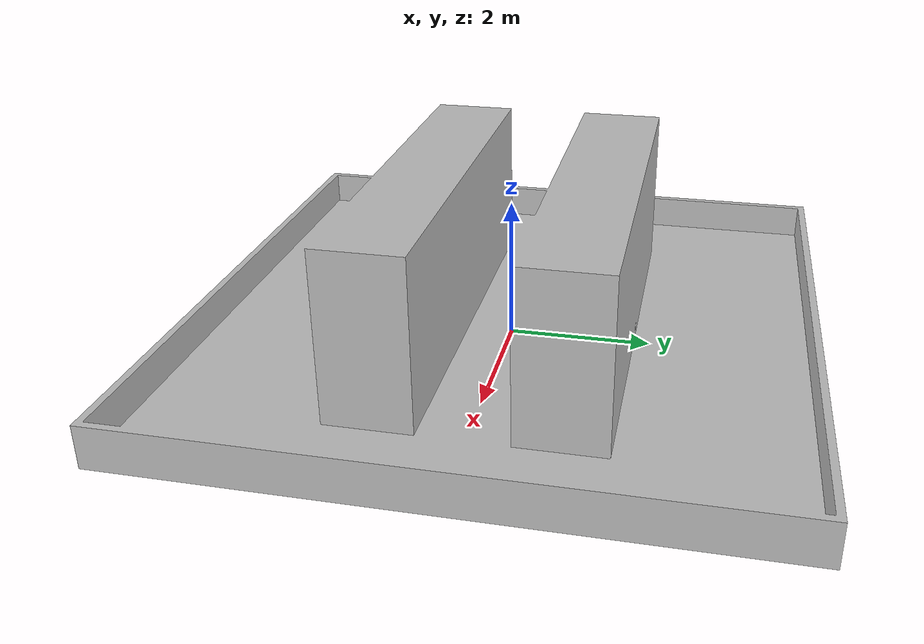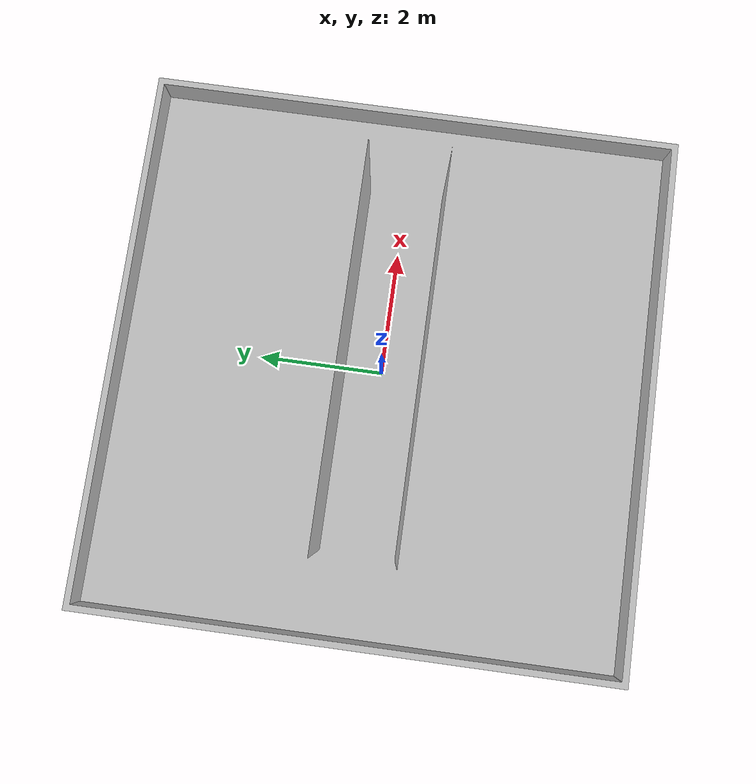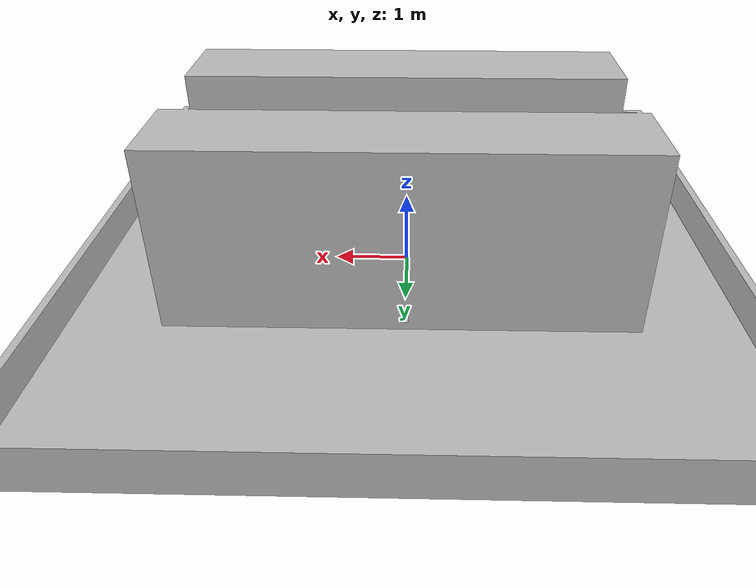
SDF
<?xml version="1.0" ?>
<sdf version="1.8">
  <world name="demo_room">
    <static>true</static>
    <physics name="1ms" type="ignored">
      <max_step_size>0.001</max_step_size>
      <real_time_factor>1.0</real_time_factor>
    </physics>
    <plugin
      filename="libignition-gazebo-physics-system.so"
      name="ignition::gazebo::systems::Physics">
    </plugin>
    <plugin
      filename="libignition-gazebo-user-commands-system.so"
      name="ignition::gazebo::systems::UserCommands">
    </plugin>
    <plugin
      filename="libignition-gazebo-scene-broadcaster-system.so"
      name="ignition::gazebo::systems::SceneBroadcaster">
    </plugin>
    <plugin
      filename="ignition-gazebo-contact-system"
      name="gz::sim::systems::Contact">
    </plugin>
    <plugin
      filename="ignition-gazebo-forcetorque-system"
      name="ignition::gazebo::systems::ForceTorque">
    </plugin>
    <plugin
      filename="libignition-gazebo-imu-system.so"
      name="ignition::gazebo::systems::Imu">
    </plugin>
    <plugin
      filename="libignition-gazebo-sensors-system.so"
      name="ignition::gazebo::systems::Sensors">
      <render_engine>ogre2</render_engine>
    </plugin>

    <!--light-->
    <light type="directional" name="sun">
      <cast_shadows>true</cast_shadows>
      <pose>0 0 10 0 0 0</pose>
      <diffuse>0.8 0.8 0.8 1</diffuse>
      <specular>0.2 0.2 0.2 1</specular>
      <attenuation>
        <range>1000</range>
        <constant>0.9</constant>
        <linear>0.01</linear>
        <quadratic>0.001</quadratic>
      </attenuation>
      <direction>-0.5 0.1 -0.9</direction>
    </light>

    <include>
      <uri>model://demo_room</uri>
    </include>
    <include>
      <uri>model://aruco_marker_0</uri>
      <pose>0 1.8 0.25 0 1.570796 0</pose>
    </include>
  </world>
</sdf>

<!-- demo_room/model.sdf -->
<sdf version="1.8">
  <model name="demo_room">
    <static>true</static>
    <link name="base_link">
      <visual name="base_link_visual">
        <pose>0 0 0 0 0 0</pose>
        <geometry>
          <mesh>
            <uri>model://demo_room/meshes/base_link.STL</uri>
          </mesh>
        </geometry>
        <material>
          <ambient>0.75 0.75 0.75 1.0</ambient>
          <diffuse>0.75 0.75 0.75 1.0</diffuse>
        </material>
      </visual>
      <collision name="base_link_collision">
        <pose>0 0 0 0 0 0</pose>
        <geometry>
          <mesh>
            <uri>model://demo_room/meshes/base_link.STL</uri>
          </mesh>
        </geometry>
      </collision>
    </link>
  </model>
</sdf>

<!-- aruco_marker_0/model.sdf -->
<sdf version="1.8">
  <model name="aruco_marker_0">
    <static>true</static>
    <link name="marker_link">
      <visual name="visual">
        <geometry>
          <box>
            <size>0.1 0.001 0.1</size>  <!-- 10cm x 얇음 x 10cm -->
          </box>
        </geometry>
        <material>
	        <ambient>1 1 1 1</ambient>
          <diffuse>1 1 1 1</diffuse>
          <specular>0 0 0 1</specular>
          <pbr>
            <metal>
              <albedo_map>model://aruco_marker_0/materials/textures/aruco_marker_0.png</albedo_map>
              <metalness>0.0</metalness>
              <roughness>1.0</roughness>
            </metal>
          </pbr>
        </material>
      </visual>
      <collision name="collision">
        <geometry>
          <box>
            <size>0.1 0.001 0.1</size>
          </box>
        </geometry>
      </collision>
    </link>
  </model>
</sdf>
